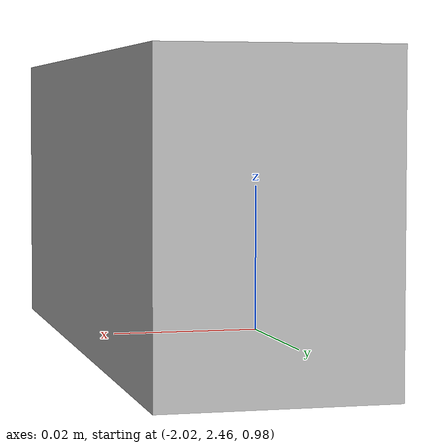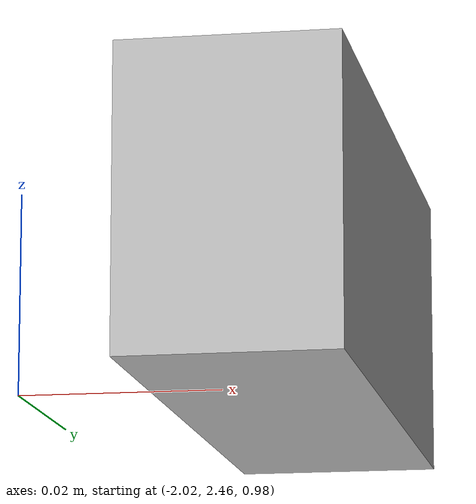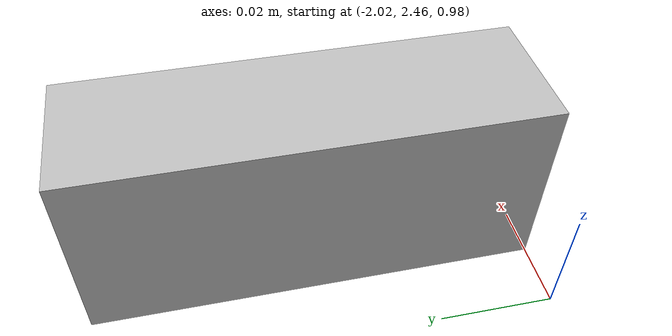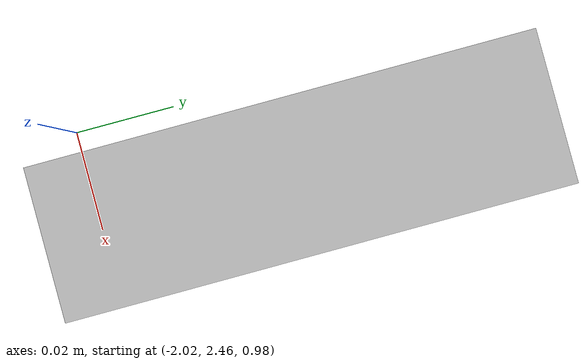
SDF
<?xml version="1.0" ?>

<sdf version="1.5">
  <model name="kinect_self">
    <pose>-2 2.5 1 0 0 0</pose>
    <link name="link">
      <inertial>
        <mass>0.01</mass>
        <inertia>
          <ixx>4.16666666667e-06</ixx>
          <iyy>5.20833333333e-07</iyy>
          <izz>3.85416666667e-06</izz>
        </inertia>
      </inertial>

      <collision name="collision">
        <geometry>
          <box>
            <size>0.023000 0.076000 0.032000</size>
          </box>
        </geometry>
      </collision>
      <visual name="visual">
        <geometry>
          <box>
            <size>0.023000 0.076000 0.032000</size>
          </box>
        </geometry>
      </visual>
      <sensor type="depth" name="camera">
      <always_on>true</always_on>
      <update_rate>30.0</update_rate>
      <camera>
        <horizontal_fov>1.3962634</horizontal_fov>
        <image>
          <format>B8G8R8</format>
          <width>640</width>
          <height>480</height>
        </image>
        <clip>
          <near>0.4</near>
          <far>16.0</far>
        </clip>
      </camera>
      <plugin name="camera_plugin" filename="libgazebo_ros_openni_kinect.so">
        <baseline>0.2</baseline>
        <alwaysOn>true</alwaysOn>
        <updateRate>0.0</updateRate>
        <cameraName>camera_ir</cameraName>
        <imageTopicName>/camera/color/image_raw</imageTopicName>
        <cameraInfoTopicName>/camera/color/camera_info</cameraInfoTopicName>
        <depthImageTopicName>/camera/depth/image_raw</depthImageTopicName>
        <depthImageCameraInfoTopicName>/camera/depth/camera_info</depthImageCameraInfoTopicName>
        <pointCloudTopicName>/camera/depth/points</pointCloudTopicName>
        <frameName>camera_link</frameName>
        <pointCloudCutoff>0.5</pointCloudCutoff>
        <pointCloudCutoffMax>8.0</pointCloudCutoffMax>
        <distortionK1>0</distortionK1>
        <distortionK2>0</distortionK2>
        <distortionK3>0</distortionK3>
        <distortionT1>0</distortionT1>
        <distortionT2>0</distortionT2>
        <CxPrime>0</CxPrime>
        <Cx>0</Cx>
        <Cy>0</Cy>
        <focalLength>0</focalLength>
        <hackBaseline>0</hackBaseline>
      </plugin>
    </sensor>
      <gravity>0</gravity>
    </link>
  </model>

</sdf>
